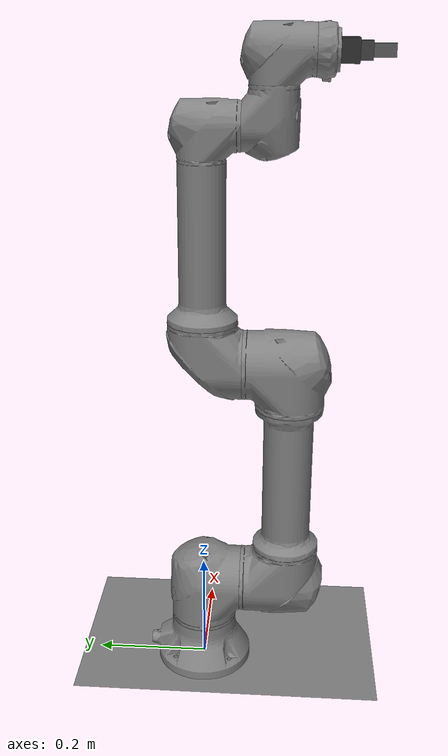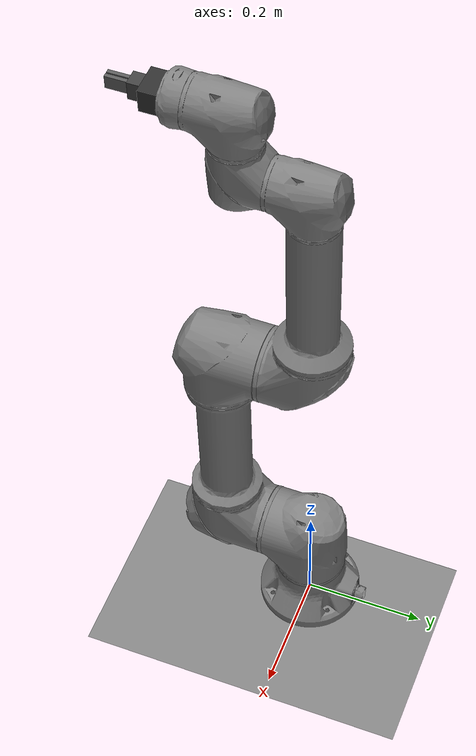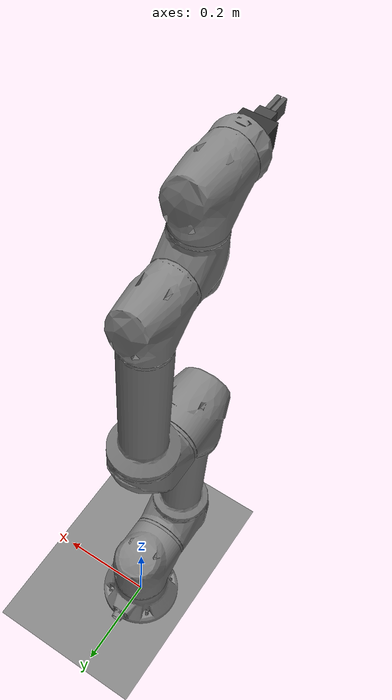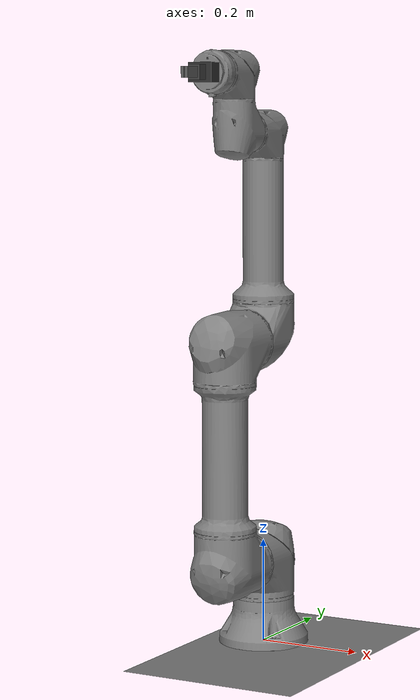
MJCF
<mujoco model="rb5_850e_gripper">
  <compiler angle="radian" autolimits="true"/>

  <option timestep="0.001"
          integrator="implicit"
          gravity="0 0 -9.81"
          solver="Newton"
          iterations="200"
          ls_iterations="100"
          noslip_iterations="8"
          impratio="10"
          ccd_iterations="100"
          ccd_tolerance="1e-8">
    <flag multiccd="enable" nativeccd="enable"/>
  </option>

  <asset>
    <mesh name="link0_mesh" file="/home/chu/manipulator_control/rbpodo_ros2/rbpodo_description/meshes/rb5_850e/collision/link0.stl"/>
    <mesh name="link1_mesh" file="/home/chu/manipulator_control/rbpodo_ros2/rbpodo_description/meshes/rb5_850e/collision/link1.stl"/>
    <mesh name="link2_mesh" file="/home/chu/manipulator_control/rbpodo_ros2/rbpodo_description/meshes/rb5_850e/collision/link2.stl"/>
    <mesh name="link3_mesh" file="/home/chu/manipulator_control/rbpodo_ros2/rbpodo_description/meshes/rb5_850e/collision/link3.stl"/>
    <mesh name="link4_mesh" file="/home/chu/manipulator_control/rbpodo_ros2/rbpodo_description/meshes/rb5_850e/collision/link4.stl"/>
    <mesh name="link5_mesh" file="/home/chu/manipulator_control/rbpodo_ros2/rbpodo_description/meshes/rb5_850e/collision/link5.stl"/>
    <mesh name="link6_mesh" file="/home/chu/manipulator_control/rbpodo_ros2/rbpodo_description/meshes/rb5_850e/collision/link6.stl"/>
  </asset>

  <!--
    robot self-collision: OFF
    robot-ground/hole/peg collision: ON
    robot geom: contype=1, conaffinity=2
    scene env geom: contype=2, conaffinity=1
  -->
  <default class="main">
    <geom type="mesh" group="0" contype="1" conaffinity="2"/>
    <joint type="hinge" damping="0.1" armature="0.001"/>
  </default>

  <worldbody>
    <geom name="ground" type="plane" pos="0 0 0" size="5 5 0.1"
          rgba="0.5 0.5 0.5 1"
          friction="1 0.005 0.0001"
          contype="2" conaffinity="1"
          margin="0.001"/>

    <body name="link0" pos="0 0 0">
      <geom type="mesh" mesh="link0_mesh"/>

      <body name="link1" pos="0 0 0.1692" childclass="main">
        <inertial pos="5.7e-05 -0.005795 -0.034516"
                  quat="0.676677 0.181125 -0.183239 0.689729"
                  mass="4.147"
                  diaginertia="0.00940157 0.00878691 0.0073332"/>
        <joint name="base" axis="0 0 1" range="-3.14 3.14"/>
        <geom type="mesh" mesh="link1_mesh"/>

        <body name="link2" pos="0 0 0" childclass="main">
          <inertial pos="-3.7e-05 -0.121603 0.212933"
                    quat="0.999997 0.000348233 7.80187e-05 -0.00223104"
                    mass="9.633"
                    diaginertia="0.392214 0.388915 0.0219492"/>
          <joint name="shoulder" axis="0 1 0" range="-3.14 3.14"/>
          <geom type="mesh" mesh="link2_mesh"/>

          <body name="link3" pos="0 0 0.425" childclass="main">
            <inertial pos="2.1e-05 -0.015845 0.202568"
                      quat="0.999948 0.0100341 -5.40187e-05 -0.00170427"
                      mass="3.915"
                      diaginertia="0.11204 0.111832 0.0075271"/>
            <joint name="elbow" axis="0 1 0" range="-3.14 3.14"/>
            <geom type="mesh" mesh="link3_mesh"/>

            <body name="link4" pos="0 0 0.392" childclass="main">
              <inertial pos="5.7e-05 -0.106332 0.025881"
                        quat="0.986693 0.162394 -0.00142514 0.00799378"
                        mass="1.452"
                        diaginertia="0.00162904 0.00160108 0.00118182"/>
              <joint name="wrist1" axis="0 1 0" range="-3.14 3.14"/>
              <geom type="mesh" mesh="link4_mesh"/>

              <body name="link5" pos="0 -0.1107 0.1107" childclass="main">
                <inertial pos="-2.8e-05 -0.025911 -0.004363"
                          quat="0.812497 0.582798 -0.00662653 0.0123056"
                          mass="1.454"
                          diaginertia="0.00163147 0.00160354 0.00118381"/>
                <joint name="wrist2" axis="0 0 1" range="-3.14 3.14"/>
                <geom type="mesh" mesh="link5_mesh"/>

                <body name="link6" pos="0 0 0" childclass="main">
                  <inertial pos="-2e-06 -0.079964 -0.000494"
                            quat="0.706709 -0.0427371 -0.0387873 0.705146"
                            mass="0.243"
                            diaginertia="0.000243707 0.000147897 0.000142261"/>
                  <joint name="wrist3" axis="0 1 0" range="-3.14 3.14"/>
                  <geom type="mesh" mesh="link6_mesh"/>

                  <!-- =====================================================
                       Gripper base
                       ===================================================== -->
                  <body name="gripper_base" pos="0 -0.0967 0">
                    <inertial pos="0 -0.018 0"
                              mass="0.45"
                              diaginertia="0.00035 0.00030 0.00020"/>

                    <!-- palm -->
                    <geom name="gripper_palm"
                          type="box"
                          pos="0 -0.014 0"
                          size="0.024 0.014 0.018"
                          mass="0.30"
                          rgba="0.18 0.18 0.18 1"
                          contype="1" conaffinity="2"
                          friction="1.0 0.005 0.0001"
                          margin="0.001"/>

                    <!-- guide block -->
                    <geom name="gripper_nose"
                          type="box"
                          pos="0 -0.038 0"
                          size="0.012 0.010 0.014"
                          mass="0.05"
                          rgba="0.25 0.25 0.25 1"
                          contype="1" conaffinity="2"
                          friction="1.0 0.005 0.0001"
                          margin="0.001"/>

                    <!-- left finger -->
                    <body name="left_finger" pos="0.004 -0.052 0">
                      <joint name="grip_left"
                             type="slide"
                             axis="1 0 0"
                             range="0 0.012"
                             damping="15"
                             armature="0.0002"/>
                      <inertial pos="0 -0.005 0"
                                mass="0.05"
                                diaginertia="1.2e-05 1.2e-05 4.0e-06"/>

                      <geom name="left_finger_geom"
                            type="box"
                            pos="0 0 0"
                            size="0.003 0.030 0.010"
                            mass="0.05"
                            rgba="0.35 0.35 0.35 1"
                            contype="1" conaffinity="2"
                            friction="1.2 0.01 0.0001"
                            margin="0.0007"/>

                      <geom name="left_pad"
                            type="box"
                            pos="-0.0012 -0.006 0"
                            size="0.0012 0.012 0.008"
                            mass="0.01"
                            rgba="0.1 0.1 0.1 1"
                            contype="1" conaffinity="2"
                            friction="2.0 0.02 0.0002"
                            margin="0.0005"/>
                    </body>

                    <!-- right finger -->
                    <body name="right_finger" pos="-0.004 -0.052 0">
                      <joint name="grip_right"
                             type="slide"
                             axis="-1 0 0"
                             range="0 0.012"
                             damping="15"
                             armature="0.0002"/>
                      <inertial pos="0 -0.005 0"
                                mass="0.05"
                                diaginertia="1.2e-05 1.2e-05 4.0e-06"/>

                      <geom name="right_finger_geom"
                            type="box"
                            pos="0 0 0"
                            size="0.003 0.030 0.010"
                            mass="0.05"
                            rgba="0.35 0.35 0.35 1"
                            contype="1" conaffinity="2"
                            friction="1.2 0.01 0.0001"
                            margin="0.0007"/>

                      <geom name="right_pad"
                            type="box"
                            pos="0.0012 -0.006 0"
                            size="0.0012 0.012 0.008"
                            mass="0.01"
                            rgba="0.1 0.1 0.1 1"
                            contype="1" conaffinity="2"
                            friction="2.0 0.02 0.0002"
                            margin="0.0005"/>
                    </body>

                    <!-- hidden reference sites -->
                    <site name="tcp"
                          pos="0 -0.070 0"
                          size="0.0001"
                          rgba="1 0 0 0"/>

                    <site name="grasp_center"
                          pos="0 -0.070 0"
                          size="0.0001"
                          rgba="0 1 0 0"/>
                  </body>
                </body>
              </body>
            </body>
          </body>
        </body>
      </body>
    </body>
  </worldbody>

  <!-- 좌우 핑거 동기화 -->
  <equality>
    <joint joint1="grip_right" joint2="grip_left" polycoef="0 1 0 0 0"/>
  </equality>

  <actuator>
    <!-- arm 6 joints -->
    <motor name="base_motor" joint="base" ctrllimited="true" ctrlrange="-100 100" gear="1"/>
    <motor name="shoulder_motor" joint="shoulder" ctrllimited="true" ctrlrange="-100 100" gear="1"/>
    <motor name="elbow_motor" joint="elbow" ctrllimited="true" ctrlrange="-100 100" gear="1"/>
    <motor name="wrist1_motor" joint="wrist1" ctrllimited="true" ctrlrange="-100 100" gear="1"/>
    <motor name="wrist2_motor" joint="wrist2" ctrllimited="true" ctrlrange="-100 100" gear="1"/>
    <motor name="wrist3_motor" joint="wrist3" ctrllimited="true" ctrlrange="-100 100" gear="1"/>

    <!-- gripper -->
    <position name="gripper_act"
              joint="grip_left"
              ctrllimited="true"
              ctrlrange="0 0.012"
              kp="800"
              forcelimited="true"
              forcerange="-20 20"/>
  </actuator>

  <keyframe>
    <!-- qpos:
         [base, shoulder, elbow, wrist1, wrist2, wrist3, grip_left, grip_right] -->
    <key name="home" qpos="0 0 0 0 0 0 0.010 0.010"/>
    <key name="grip_close" qpos="0 0 0 0 0 0 0.000 0.000"/>
    <key name="grip_open" qpos="0 0 0 0 0 0 0.012 0.012"/>
  </keyframe>
</mujoco>
